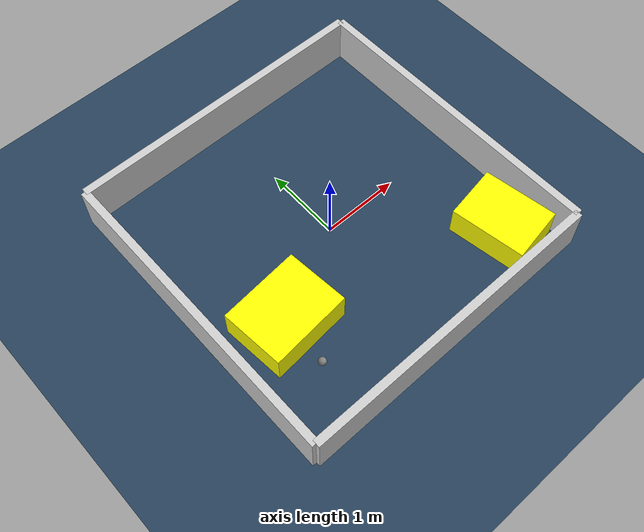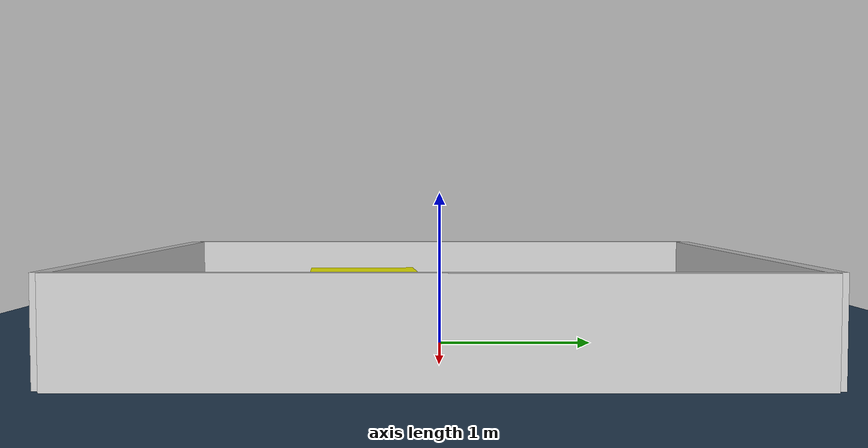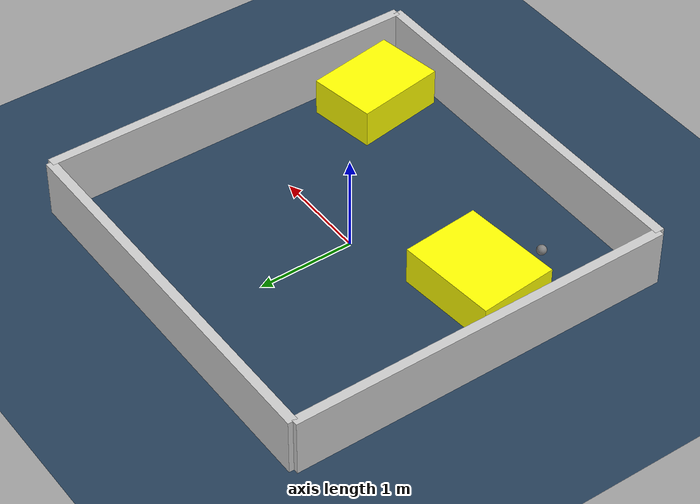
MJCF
<?xml version="1.0" ?>
<mujoco model="generated_environment">
  <option timestep="0.01" integrator="RK4" cone="elliptic"/>
  <default>
    <geom density="1"/>
  </default>
  <asset>
    <texture builtin="gradient" height="3072" rgb1="0.3 0.5 0.7" rgb2="0 0 0" type="skybox" width="512"/>
    <texture builtin="checker" height="300" mark="edge" markrgb="0.8 0.8 0.8" name="groundplane" rgb1="0.2 0.3 0.4" rgb2="0.1 0.2 0.3" type="2d" width="300"/>
    <material name="groundplane" reflectance="0.2" texrepeat="5 5" texture="groundplane" texuniform="true"/>
    <material name="robot" rgba="0.0 1.0 0.0 1"/>
  </asset>
  <worldbody>
    <light dir="0 0 -1" directional="true" pos="0 0 1.5"/>
    <geom condim="4" friction="1.0 0.005 0.001" material="groundplane" name="floor" size="0 0 0.05" type="plane"/>
    <body name="walls">
      <geom name="wall_1" condim="4" pos="-2.0 0.0 0.3" rgba="0.800000011920929 0.800000011920929 0.800000011920929 1.0" size="0.05 2.0 0.3" type="box"/>
      <geom name="wall_2" condim="4" pos="2.0 0.0 0.3" rgba="0.800000011920929 0.800000011920929 0.800000011920929 1.0" size="0.05 2.0 0.3" type="box"/>
      <geom name="wall_3" condim="4" pos="0.0 -2.0 0.3" rgba="0.800000011920929 0.800000011920929 0.800000011920929 1.0" size="2.0 0.05 0.3" type="box"/>
      <geom name="wall_4" condim="4" pos="0.0 2.0 0.3" rgba="0.800000011920929 0.800000011920929 0.800000011920929 1.0" size="2.0 0.05 0.3" type="box"/>
    </body>
    <body name="robot">
      <joint name="joint_x" type="slide" pos="0 0 0" axis="1 0 0"/>
      <joint name="joint_y" type="slide" pos="0 0 0" axis="0 1 0"/>
      <geom name="robot" type="sphere" pos="-1.2576883235064065 -1.2629188377617095 0.2" size="0.05" mass="5." friction="1.0 0.005 0.0001" condim="4"/>
      <site name="sensor_ball"/>
    </body>
    <body name="obstacle_1_movable">
      <geom name="obstacle_1_movable" condim="4" pos="1.4879237311210902 -1.3676997916973161 0.2" euler="0 0 189.05701975902332" friction="1.0 0.005 0.001" rgba="1 1 0 1" size="0.35773403803267645 0.473705642630465 0.2" type="box" mass="0.1"/>
      <joint type="free"/>
    </body>
    <body name="obstacle_2_movable">
      <geom name="obstacle_2_movable" condim="4" pos="-1.190520145016795 -0.5818868883424716 0.2" euler="0 0 275.13597897069036" friction="1.0 0.005 0.001" rgba="1 1 0 1" size="0.4092031328074618 0.5229144754491835 0.2" type="box" mass="0.1"/>
      <joint type="free"/>
    </body>
  </worldbody>
  <actuator>
    <motor name="actuator_x" joint="joint_x" gear="1" ctrlrange="-1 1"/>
    <motor name="actuator_y" joint="joint_y" gear="1" ctrlrange="-1 1"/>
  </actuator>
</mujoco>
